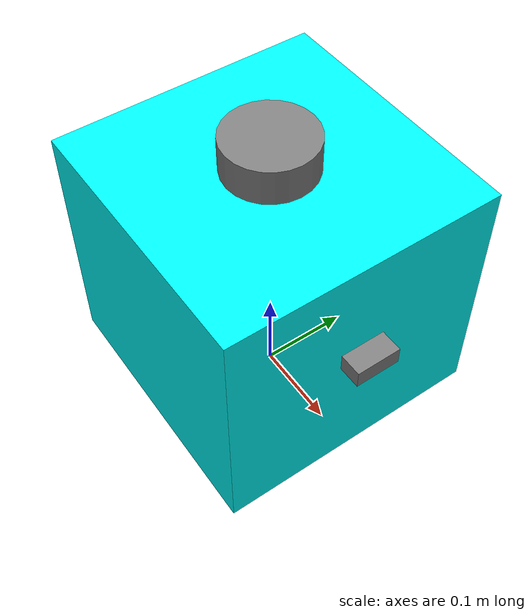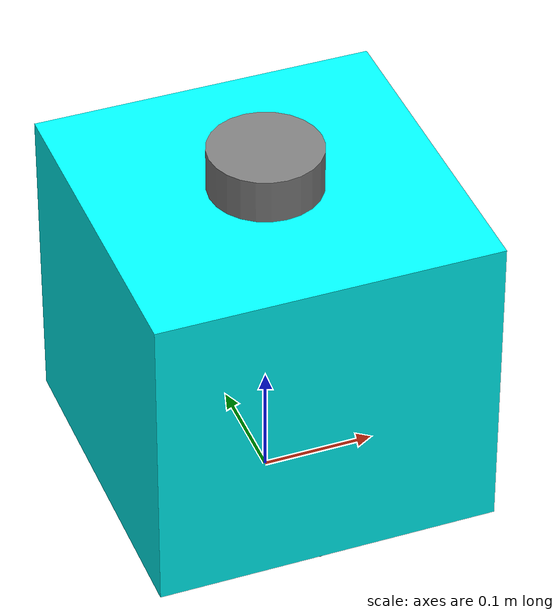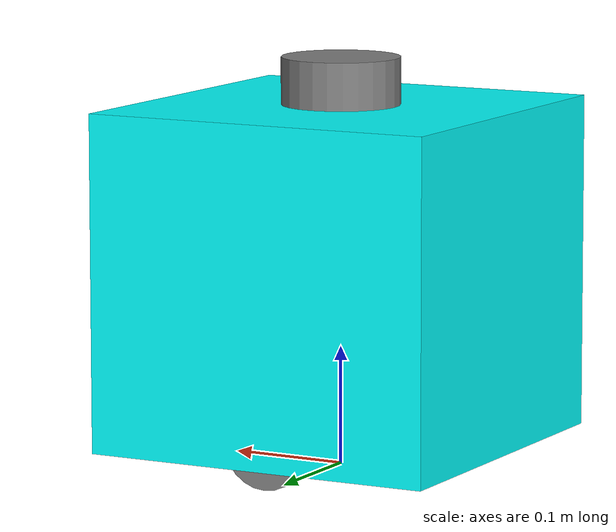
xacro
<?xml version="1.0"?>
<robot name="sec_bot" xmlns:xacro="http://ros.org/wiki/xacro">

    <xacro:arg name="use_ros2_control" default="true"/>
    <xacro:arg name="sim_mode" default="false"/>

    <!-- Meters -->
    <xacro:property name="chassis_length" value="0.3048"/>
    <xacro:property name="chassis_width" value="0.3048"/>
    <xacro:property name="chassis_height" value="0.2838"/>
    <xacro:property name="chassis_mass" value="10"/> <!--What is the unit for this?-->
    <xacro:property name="chassis_z_offset" value="0.021"/> <!--Currently unused, going to try to implement for total height translation-->

    <xacro:property name="wheel_radius" value="0.0381"/> <!-- Update wheel radius paramter in controllers.yaml as well-->
    <xacro:property name="wheel_length" value="0.0254"/>
    <xacro:property name="wheel_mass" value="10"/>

    <xacro:property name="wheel_y_displacement" value="0.12065"/> <!-- Update wheel separation paramter in controllers.yaml as well-->
    <xacro:property name="wheel_z_displacement" value="${wheel_radius/2}"/>

    <xacro:property name="camera_x" value="${chassis_width/2}"/>
    <xacro:property name="camera_y" value="0"/>
    <xacro:property name="camera_z" value="${chassis_z_offset+chassis_height/2}"/>
    <xacro:property name="camera_length" value="0.05"/>
    <xacro:property name="camera_width" value="0.05"/>
    <xacro:property name="camera_height" value="0.02"/>
    <xacro:property name="camera_fov" value="1.089"/>

    <xacro:property name="imu_x" value="0"/>
    <xacro:property name="imu_y" value="0"/>
    <xacro:property name="imu_z" value="${chassis_z_offset+chassis_height}"/>
    <xacro:property name="imu_length" value="0.05"/>
    <xacro:property name="imu_width" value="0.05"/>
    <xacro:property name="imu_height" value="0.02"/>

    <xacro:property name="lidar_x" value="0"/>
    <xacro:property name="lidar_y" value="0"/>
    <xacro:property name="lidar_z" value="${chassis_height+lidar_length/2}"/>
    <xacro:property name="lidar_radius" value="0.05"/>
    <xacro:property name="lidar_length" value="0.04"/>

    <xacro:if value="$(arg sim_mode)">
        <xacro:include filename="robot_core_sim.xacro"/>
    </xacro:if>
    <xacro:unless value="$(arg sim_mode)">
        <xacro:include filename="robot_core_hw.xacro" />
    </xacro:unless>

    <xacro:include filename="camera.xacro"/>
    <xacro:include filename="imu.xacro"/>
    <xacro:include filename="lidar.xacro"/>

    <xacro:if value="$(arg use_ros2_control)">
        <xacro:include filename="ros2_control.xacro" />
    </xacro:if>
    <xacro:unless value="$(arg use_ros2_control)">
        <xacro:include filename="gazebo_control.xacro" />
    </xacro:unless>

</robot>

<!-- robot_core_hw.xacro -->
<robot xmlns:xacro="http://ros.org/wiki/xacro">

    <xacro:include filename="inertial_macros.xacro"/>

    <!-- The difference between bottom middle of chassis and wheel position(s)-->
    <xacro:property name="wheel_x_displacement" value="0.0"/>

    <!-- Base Link -->
    <link name="base_link"/>

    <!--Base Footprint Link-->
    <joint name="base_footprint_joint" type="fixed">
        <parent link="base_link"/>
        <child link="base_footprint"/>
        <origin xyz="0 0 0" rpy="0 0 0"/>
    </joint>

    <link name="base_footprint">
    </link>

    <!-- Chassis -->
    <joint name="chassis_joint" type="fixed">
        <parent link="base_link"/>
        <child link="chassis"/>
        <origin xyz="0.0 0.0 ${chassis_z_offset}" rpy="0 0 0"/>
    </joint>

    <link name="chassis">
        <visual>
            <origin xyz="0 0 ${chassis_height/2}" rpy="0 0 0"/>
            <geometry>
                <box size="${chassis_length} ${chassis_width} ${chassis_height}"/>
            </geometry>
            <material name="Cyan">
                <color rgba="0 1.0 1.0 1.0"/>
            </material>
        </visual>

        <collision>
            <origin xyz="0 0 ${chassis_height/2}" rpy="0 0 0"/>
            <geometry>
                <box size="${chassis_length} ${chassis_width} ${chassis_height}"/>
            </geometry>
        </collision>

        <xacro:inertial_box mass="${chassis_mass}" x="${chassis_length}" y="${chassis_width}" z="${chassis_height}">
            <origin xyz="0 0 ${chassis_height/2}" rpy="0 0 0"/>
        </xacro:inertial_box>
    </link>

    <!-- Wheels -->
    <joint name="left_wheel_joint" type="continuous">
        <parent link="chassis"/>
        <child link="left_wheel"/>
        <origin xyz="${-1*wheel_x_displacement} ${-1*wheel_y_displacement} ${wheel_z_displacement}" rpy="0 0 0"/>
        <axis xyz="0 1 0"/>
    </joint>

    <link name="left_wheel">
        <visual>
            <origin xyz="0 0 0" rpy="${pi/2} 0 0"/>
            <geometry>
                <cylinder radius="${wheel_radius}" length="${wheel_length}"/>
            </geometry>
            <material name="Gray">
                <color rgba="0.5 0.5 0.5 1.0"/>
            </material>
        </visual>

        <collision>
            <origin xyz="0 0 0" rpy="${pi/2} 0 0"/>
            <geometry>
                <sphere radius="${wheel_radius}"/>
            </geometry>
        </collision>

        <xacro:inertial_cylinder mass="${wheel_mass}" length="${wheel_length}" radius="${wheel_radius}">
            <origin xyz="0 0 0" rpy="${pi/2} 0 0"/>
        </xacro:inertial_cylinder>
    </link>

    <joint name="right_wheel_joint" type="continuous">
        <parent link="chassis"/>
        <child link="right_wheel"/>
        <origin xyz="${wheel_x_displacement} ${wheel_y_displacement} ${wheel_z_displacement}" rpy="0 0 0"/>
        <axis xyz="0 1 0"/>
    </joint>

    <link name="right_wheel">
        <visual>
            <origin xyz="0 0 0" rpy="${pi/2} 0 0"/>
            <geometry>
                <cylinder radius="${wheel_radius}" length="${wheel_length}"/>
            </geometry>
            <material name="Gray">
                <color rgba="0.5 0.5 0.5 1.0"/>
            </material>
        </visual>

        <collision>
            <origin xyz="0 0 0" rpy="${pi/2} 0 0"/>
            <geometry>
                <sphere radius="${wheel_radius}"/>
            </geometry>
        </collision>

        <xacro:inertial_cylinder mass="${wheel_mass}" length="${wheel_length}" radius="${wheel_radius}">
            <origin xyz="0 0 0" rpy="${pi/2} 0 0"/>
        </xacro:inertial_cylinder>
    </link>
</robot>

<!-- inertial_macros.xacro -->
<robot xmlns:xacro="http://www.ros.org/wiki/xacro">

    <!-- Specify some standard inertial calculations https://en.wikipedia.org/wiki/List_of_moments_of_inertia -->
    <!-- These make use of xacro's mathematical functionality -->

    <xacro:macro name="inertial_sphere" params="mass radius *origin">
        <inertial>
            <xacro:insert_block name="origin"/>
            <mass value="${mass}"/>
            <inertia ixx="${(2/5) * mass * (radius*radius)}" ixy="0.0" ixz="0.0"
                     iyy="${(2/5) * mass * (radius*radius)}" iyz="0.0"
                     izz="${(2/5) * mass * (radius*radius)}"/>
        </inertial>
    </xacro:macro>

    <xacro:macro name="inertial_box" params="mass x y z *origin">
        <inertial>
            <xacro:insert_block name="origin"/>
            <mass value="${mass}"/>
            <inertia ixx="${(1/12) * mass * (y*y+z*z)}" ixy="0.0" ixz="0.0"
                     iyy="${(1/12) * mass * (x*x+z*z)}" iyz="0.0"
                     izz="${(1/12) * mass * (x*x+y*y)}"/>
        </inertial>
    </xacro:macro>

    <xacro:macro name="inertial_cylinder" params="mass length radius *origin">
        <inertial>
            <xacro:insert_block name="origin"/>
            <mass value="${mass}"/>
            <inertia ixx="${(1/12) * mass * (3*radius*radius + length*length)}" ixy="0.0" ixz="0.0"
                     iyy="${(1/12) * mass * (3*radius*radius + length*length)}" iyz="0.0"
                     izz="${(1/2) * mass * (radius*radius)}"/>
        </inertial>
    </xacro:macro>

</robot>

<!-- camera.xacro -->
<robot xmlns:xacro="http://ros.org/wiki/xacro">

    <joint name="camera_joint" type="fixed">
            <parent link="chassis"/>
            <child link="camera_link"/>
            <origin xyz="${camera_x} ${camera_y} ${camera_z}" rpy="0 0 0"/>
        </joint>

        <link name="camera_link">
            <visual>
                <geometry>
                    <box size="${camera_length} ${camera_width} ${camera_height}"/>
                </geometry>
                <material name="Gray">
                    <color rgba="0.5 0.5 0.5 1.0"/>
                </material>
            </visual>
        <xacro:inertial_box mass=".7" x="${camera_x}" y="${camera_y}" z="${camera_z}">
            <origin xyz="0 0 0" rpy="0 0 0"/>
        </xacro:inertial_box>
        </link>

        <joint name="camera_optical_joint" type="fixed">
            <parent link="camera_link"/>
            <child link="camera_link_optical"/>
            <origin xyz="0 0 0" rpy="${-pi/2} 0 ${-pi/2}"/>
        </joint>

        <link name="camera_link_optical"></link>

        <gazebo reference="camera_link">
            <material>Gazebo/Red</material>

            <sensor name="camera" type="camera">
                <pose> 0 0 0 0 0 0 </pose>
                <visualize>true</visualize>
                <update_rate>10</update_rate>
                <camera>
                    <horizontal_fov>${camera_fov}</horizontal_fov>
                    <image>
                        <format>R8G8B8</format>
                        <width>640</width>
                        <height>480</height>
                    </image>
                    <clip>
                        <near>0.05</near>
                        <far>8.0</far>
                    </clip>
                </camera>
                <plugin name="camera_controller" filename="libgazebo_ros_camera.so">
                    <frame_name>camera_link_optical</frame_name>
                </plugin>
            </sensor>
        </gazebo>

</robot>

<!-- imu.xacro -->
<robot xmlns:xacro="http://ros.org/wiki/xacro">

    <joint name="imu_joint" type="fixed">
            <parent link="chassis"/>
            <child link="imu_link"/>
            <origin xyz="${imu_x} ${imu_y} ${imu_z}" rpy="0 0 0"/>
        </joint>

    <link name="imu_link">
        <visual>
            <geometry>
                <box size="${imu_length} ${imu_width} ${imu_height}"/>
            </geometry>
            <material name="Gray">
                <color rgba="0.5 0.5 0.5 1.0"/>
            </material>
        </visual>
        <xacro:inertial_box mass=".15" x="${imu_width}" y="${imu_length}" z="${imu_height}">
            <origin xyz="0 0 0" rpy="0 0 0"/>
        </xacro:inertial_box>
    </link>

    <gazebo reference="imu_link">
        <sensor name="br_imu" type="imu">
            <always_on>true</always_on>
            <update_rate>100</update_rate>
            <imu>
            <angular_velocity>
                <x>
                <noise type="gaussian">
                    <mean>0.0</mean>
                    <stddev>2e-4</stddev>
                </noise>
                </x>
                <y>
                <noise type="gaussian">
                    <mean>0.0</mean>
                    <stddev>2e-4</stddev>
                </noise>
                </y>
                <z>
                <noise type="gaussian">
                    <mean>0.0</mean>
                    <stddev>2e-4</stddev>
                </noise>
                </z>
            </angular_velocity>
            <linear_acceleration>
                <x>
                <noise type="gaussian">
                    <mean>0.0</mean>
                    <stddev>1.7e-2</stddev>
                </noise>
                </x>
                <y>
                <noise type="gaussian">
                    <mean>0.0</mean>
                    <stddev>1.7e-2</stddev>
                </noise>
                </y>
                <z>
                <noise type="gaussian">
                    <mean>0.0</mean>
                    <stddev>1.7e-2</stddev>
                </noise>
                </z>
            </linear_acceleration>
            </imu>
            <plugin name="imu_controller" filename="libgazebo_ros_imu_sensor.so">
                <ros>
                    <remapping>~/out:=imu_broadcaster/imu</remapping>
                </ros>
                <initial_orientation_as_reference>false</initial_orientation_as_reference>
            </plugin>
        </sensor>
    </gazebo>
</robot>

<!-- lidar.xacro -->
<robot xmlns:xacro="http://ros.org/wiki/xacro">

    <joint name="lidar_joint" type="fixed">
            <parent link="chassis"/>
            <child link="lidar_link"/>
            <origin xyz="${lidar_x} ${lidar_y} ${lidar_z}" rpy="0 0 0"/>

    </joint>

    <link name="lidar_link">
        <visual>
            <geometry>
                <cylinder radius="${lidar_radius}" length="${lidar_length}"/>
            </geometry>
            <material name="Gray">
                <color rgba="0.5 0.5 0.5 1.0"/>
            </material>
        </visual>
        <xacro:inertial_cylinder mass="0.1" length="0.04" radius="0.05">
            <origin xyz="0 0 0" rpy="0 0 0"/>
        </xacro:inertial_cylinder>
    </link>

    <gazebo reference="lidar_link">
        <sensor name="laser" type="ray">
            <always_on>true</always_on>
            <visualize>false</visualize>
            <pose>0.0 0 0.0 0 0 0</pose>
            <update_rate>10</update_rate>
            <ray>
                <scan>
                    <horizontal>
                    <samples>360</samples>
                    <resolution>1</resolution>
                    <min_angle>-1.57</min_angle>
                    <max_angle>1.57</max_angle>
                    </horizontal>
                </scan>
                <range>
                    <min>0.3</min>
                    <max>12</max>
                    <resolution>0.01</resolution>
                </range>
            </ray>
            <plugin name="laser_controller" filename="libgazebo_ros_ray_sensor.so">
                <ros>
                    <remapping>~/out:=/scan</remapping>
                </ros>
                <output_type>sensor_msgs/LaserScan</output_type>
                <frame_name>lidar_link</frame_name>
            </plugin>
        </sensor>
    </gazebo>

</robot>
